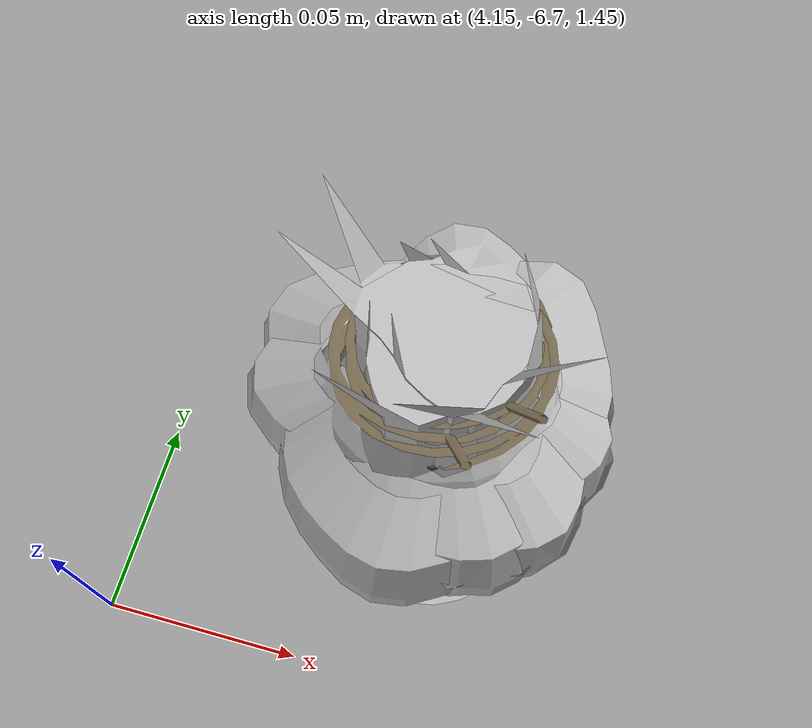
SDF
<sdf version="1.11">
 <world name="peach_orchard">
  <model name="ground">
   <static>true</static>
   <link name="link">
    <visual name="soil">
     <geometry><plane><normal>0 0 1</normal><size>32 22</size></plane></geometry>
     <material>
      <ambient>1 1 1 1</ambient>
      <diffuse>1 1 1 1</diffuse>
      <specular>0.1 0.1 0.1 1</specular>
      <pbr>
       <metal>
        <albedo_map>textures/soil_albedo.png</albedo_map>
        <normal_map type="tangent">textures/soil_normal.png</normal_map>
        <roughness>0.95</roughness>
        <metalness>0</metalness>
       </metal>
      </pbr>
     </material>
    </visual>
    <collision name="c_soil">
     <geometry><plane><normal>0 0 1</normal><size>32 22</size></plane></geometry>
    </collision>
   </link>
  </model>
  <model name="peach_tree_r3_t0_04">
   <pose>4.22 -6.63714 1.45 0 0.0247199 -0.730606</pose>
   <static>true</static>
   <link name="bag">
    <visual name="bag_mesh">
     <pose>0 0 0.0409046 0 0 -0</pose>
     <geometry>
      <mesh><uri>model://peach_sim/meshes/bagged_peach.glb</uri><scale>1.07297 1.16267 0.929651</scale></mesh>
     </geometry>
    </visual>
    <visual name="body">
     <pose>0 0 0.0229046 0 0 0</pose>
     <geometry><ellipsoid><radii>0.0402364 0.0302294 0.024737</radii></ellipsoid></geometry>
     <material>
      <ambient>1 1 1 1</ambient>
      <diffuse>1 1 1 1</diffuse>
      <specular>0.1 0.1 0.1 1</specular>
      <pbr>
       <metal>
        <albedo_map>textures/paper_bag_albedo.png</albedo_map>
        <normal_map type="tangent">textures/paper_bag_normal.png</normal_map>
        <roughness>0.72</roughness>
        <metalness>0</metalness>
       </metal>
      </pbr>
     </material>
    </visual>
    <visual name="bottom_fold">
     <pose>0 0 0.012 0 0 0.35</pose>
     <geometry><box><size>0.0623665 0.0347638 0.022</size></box></geometry>
     <material>
      <ambient>1 1 1 1</ambient>
      <diffuse>1 1 1 1</diffuse>
      <specular>0.1 0.1 0.1 1</specular>
      <pbr>
       <metal>
        <albedo_map>textures/paper_bag_albedo.png</albedo_map>
        <normal_map type="tangent">textures/paper_bag_normal.png</normal_map>
        <roughness>0.8</roughness>
        <metalness>0</metalness>
       </metal>
      </pbr>
     </material>
    </visual>
    <visual name="fruit">
     <pose>0 0 0.0209204 0 0 0</pose>
     <geometry><sphere><radius>0.0279973</radius></sphere></geometry>
     <material>
      <ambient>1 1 1 1</ambient>
      <diffuse>1 1 1 1</diffuse>
      <specular>0.1 0.1 0.1 1</specular>
      <pbr>
       <metal>
        <albedo_map>textures/fruit_skin_albedo.png</albedo_map>
        <normal_map type="tangent">textures/fruit_skin_normal.png</normal_map>
        <roughness>0.55</roughness>
        <metalness>0</metalness>
       </metal>
      </pbr>
     </material>
    </visual>
    <visual name="neck">
     <pose>0 0 0.0548093 0 0 0</pose>
     <geometry><cylinder><radius>0.013</radius><length>0.018</length></cylinder></geometry>
     <material>
      <ambient>1 1 1 1</ambient>
      <diffuse>1 1 1 1</diffuse>
      <specular>0.1 0.1 0.1 1</specular>
      <pbr>
       <metal>
        <albedo_map>textures/paper_bag_albedo.png</albedo_map>
        <normal_map type="tangent">textures/paper_bag_normal.png</normal_map>
        <roughness>0.75</roughness>
        <metalness>0</metalness>
       </metal>
      </pbr>
     </material>
    </visual>
    <visual name="gather">
     <pose>0 0 0.0358093 0 0 0</pose>
     <geometry><cylinder><radius>0.019</radius><length>0.02</length></cylinder></geometry>
     <material>
      <ambient>1 1 1 1</ambient>
      <diffuse>1 1 1 1</diffuse>
      <specular>0.1 0.1 0.1 1</specular>
      <pbr>
       <metal>
        <albedo_map>textures/paper_bag_albedo.png</albedo_map>
        <normal_map type="tangent">textures/paper_bag_normal.png</normal_map>
        <roughness>0.8</roughness>
        <metalness>0</metalness>
       </metal>
      </pbr>
     </material>
    </visual>
    <visual name="inner_paper">
     <pose>0 0 0.0598093 0 0 0</pose>
     <geometry><cylinder><radius>0.01</radius><length>0.008</length></cylinder></geometry>
     <material>
      <ambient>0.180392 0.14902 0.133333 1</ambient>
      <diffuse>0.180392 0.14902 0.133333 1</diffuse>
      <specular>0.1 0.1 0.1 1</specular>
     </material>
    </visual>
    <visual name="wire_0">
     <pose>0 0 0.0498093 0 0 0</pose>
     <geometry><cylinder><radius>0.0205</radius><length>0.0035</length></cylinder></geometry>
     <material>
      <ambient>0.25 0.25 0.25 1</ambient>
      <diffuse>0.25 0.25 0.25 1</diffuse>
      <specular>0.1 0.1 0.1 1</specular>
     </material>
    </visual>
    <visual name="wire_1">
     <pose>0 0 0.0568093 0 0 0</pose>
     <geometry><cylinder><radius>0.0205</radius><length>0.0035</length></cylinder></geometry>
     <material>
      <ambient>0.25 0.25 0.25 1</ambient>
      <diffuse>0.25 0.25 0.25 1</diffuse>
      <specular>0.1 0.1 0.1 1</specular>
     </material>
    </visual>
    <visual name="wire_tail">
     <pose>0.01 0 0.0578093 0 0.521618 0</pose>
     <geometry><cylinder><radius>0.0012</radius><length>0.026</length></cylinder></geometry>
     <material>
      <ambient>0.25 0.25 0.25 1</ambient>
      <diffuse>0.25 0.25 0.25 1</diffuse>
      <specular>0.1 0.1 0.1 1</specular>
     </material>
    </visual>
    <collision name="c_body">
     <pose>0 0 0.0229046 0 0 0</pose>
     <geometry><cylinder><radius>0.0402364</radius><length>0.0458093</length></cylinder></geometry>
    </collision>
   </link>
  </model>
  <model name="peach_tree_r3_t0_05">
   <pose>4.22 -6.63847 1.45 0 0.0464195 -1.29755</pose>
   <static>true</static>
   <link name="bag">
    <visual name="bag_mesh">
     <pose>0 0 0.040721 0 0 -0</pose>
     <geometry>
      <mesh><uri>model://peach_sim/meshes/bagged_peach.glb</uri><scale>1.07806 1.24935 0.925478</scale></mesh>
     </geometry>
    </visual>
    <visual name="body">
     <pose>0 0 0.022721 0 0 0</pose>
     <geometry><ellipsoid><radii>0.0404273 0.0324831 0.0245387</radii></ellipsoid></geometry>
     <material>
      <ambient>1 1 1 1</ambient>
      <diffuse>1 1 1 1</diffuse>
      <specular>0.1 0.1 0.1 1</specular>
      <pbr>
       <metal>
        <albedo_map>textures/paper_bag_albedo.png</albedo_map>
        <normal_map type="tangent">textures/paper_bag_normal.png</normal_map>
        <roughness>0.72</roughness>
        <metalness>0</metalness>
       </metal>
      </pbr>
     </material>
    </visual>
    <visual name="bottom_fold">
     <pose>0 0 0.012 0 0 0.35</pose>
     <geometry><box><size>0.0626624 0.0373556 0.022</size></box></geometry>
     <material>
      <ambient>1 1 1 1</ambient>
      <diffuse>1 1 1 1</diffuse>
      <specular>0.1 0.1 0.1 1</specular>
      <pbr>
       <metal>
        <albedo_map>textures/paper_bag_albedo.png</albedo_map>
        <normal_map type="tangent">textures/paper_bag_normal.png</normal_map>
        <roughness>0.8</roughness>
        <metalness>0</metalness>
       </metal>
      </pbr>
     </material>
    </visual>
    <visual name="fruit">
     <pose>0 0 0.0215644 0 0 0</pose>
     <geometry><sphere><radius>0.028667</radius></sphere></geometry>
     <material>
      <ambient>1 1 1 1</ambient>
      <diffuse>1 1 1 1</diffuse>
      <specular>0.1 0.1 0.1 1</specular>
      <pbr>
       <metal>
        <albedo_map>textures/fruit_skin_albedo.png</albedo_map>
        <normal_map type="tangent">textures/fruit_skin_normal.png</normal_map>
        <roughness>0.55</roughness>
        <metalness>0</metalness>
       </metal>
      </pbr>
     </material>
    </visual>
    <visual name="neck">
     <pose>0 0 0.0544421 0 0 0</pose>
     <geometry><cylinder><radius>0.013</radius><length>0.018</length></cylinder></geometry>
     <material>
      <ambient>1 1 1 1</ambient>
      <diffuse>1 1 1 1</diffuse>
      <specular>0.1 0.1 0.1 1</specular>
      <pbr>
       <metal>
        <albedo_map>textures/paper_bag_albedo.png</albedo_map>
        <normal_map type="tangent">textures/paper_bag_normal.png</normal_map>
        <roughness>0.75</roughness>
        <metalness>0</metalness>
       </metal>
      </pbr>
     </material>
    </visual>
    <visual name="gather">
     <pose>0 0 0.0354421 0 0 0</pose>
     <geometry><cylinder><radius>0.019</radius><length>0.02</length></cylinder></geometry>
     <material>
      <ambient>1 1 1 1</ambient>
      <diffuse>1 1 1 1</diffuse>
      <specular>0.1 0.1 0.1 1</specular>
      <pbr>
       <metal>
        <albedo_map>textures/paper_bag_albedo.png</albedo_map>
        <normal_map type="tangent">textures/paper_bag_normal.png</normal_map>
        <roughness>0.8</roughness>
        <metalness>0</metalness>
       </metal>
      </pbr>
     </material>
    </visual>
    <visual name="inner_paper">
     <pose>0 0 0.0594421 0 0 0</pose>
     <geometry><cylinder><radius>0.01</radius><length>0.008</length></cylinder></geometry>
     <material>
      <ambient>0.180392 0.14902 0.133333 1</ambient>
      <diffuse>0.180392 0.14902 0.133333 1</diffuse>
      <specular>0.1 0.1 0.1 1</specular>
     </material>
    </visual>
    <visual name="wire_0">
     <pose>0 0 0.0494421 0 0 0</pose>
     <geometry><cylinder><radius>0.0205</radius><length>0.0035</length></cylinder></geometry>
     <material>
      <ambient>0.25 0.25 0.25 1</ambient>
      <diffuse>0.25 0.25 0.25 1</diffuse>
      <specular>0.1 0.1 0.1 1</specular>
     </material>
    </visual>
    <visual name="wire_1">
     <pose>0 0 0.0564421 0 0 0</pose>
     <geometry><cylinder><radius>0.0205</radius><length>0.0035</length></cylinder></geometry>
     <material>
      <ambient>0.25 0.25 0.25 1</ambient>
      <diffuse>0.25 0.25 0.25 1</diffuse>
      <specular>0.1 0.1 0.1 1</specular>
     </material>
    </visual>
    <visual name="wire_tail">
     <pose>0.01 0 0.0574421 0 0.521618 0</pose>
     <geometry><cylinder><radius>0.0012</radius><length>0.026</length></cylinder></geometry>
     <material>
      <ambient>0.25 0.25 0.25 1</ambient>
      <diffuse>0.25 0.25 0.25 1</diffuse>
      <specular>0.1 0.1 0.1 1</specular>
     </material>
    </visual>
    <collision name="c_body">
     <pose>0 0 0.022721 0 0 0</pose>
     <geometry><cylinder><radius>0.0404273</radius><length>0.0454421</length></cylinder></geometry>
    </collision>
   </link>
  </model>
 </world>
</sdf>
